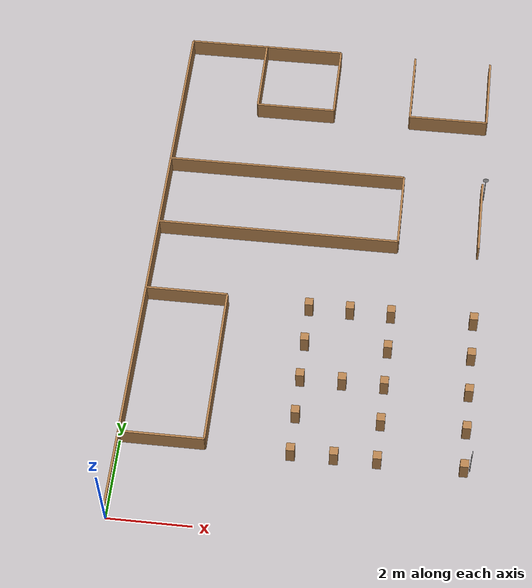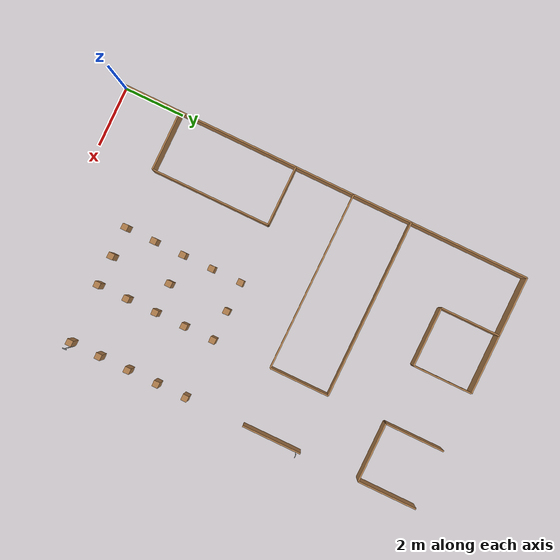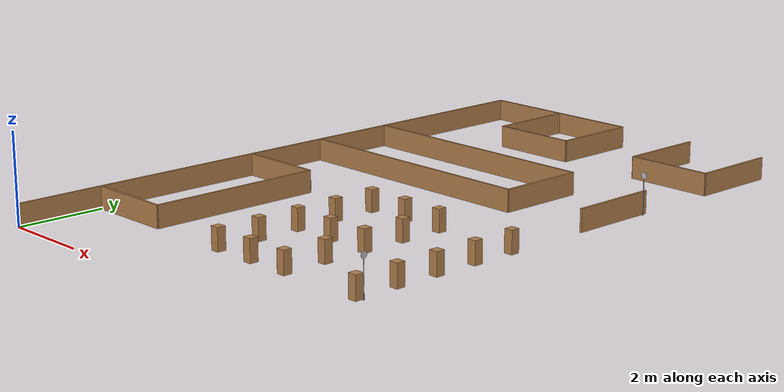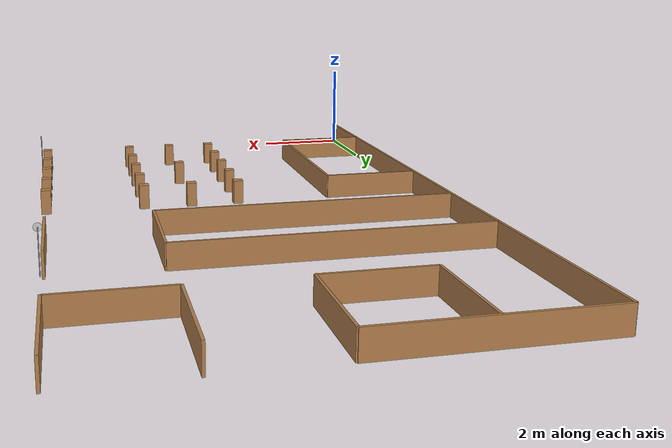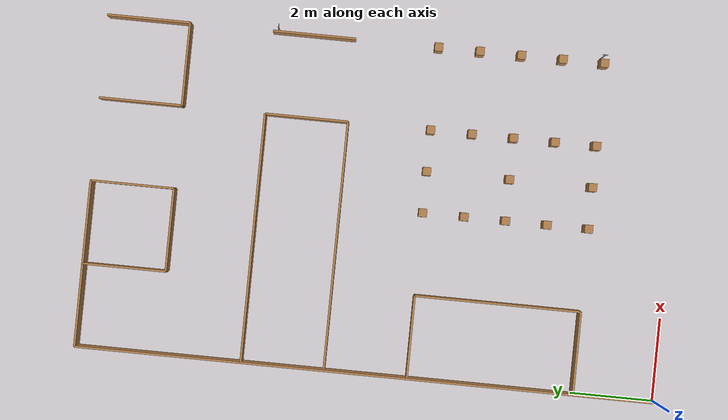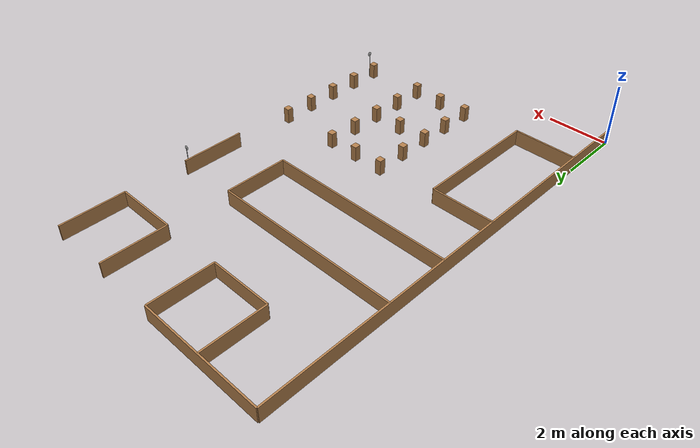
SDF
<sdf version="1.6">
 <world name="default">
  <model name="box_70">
   <pose>8.0 2.0 0.25 0 0 0</pose>
   <link name="link">
    <inertial>
     <mass>1</mass>
     <inertia><ixx>0</ixx><ixy>0</ixy><ixz>0</ixz><iyy>0</iyy><iyz>0</iyz><izz>0</izz></inertia>
    </inertial>
    <collision name="collision"><geometry><box><size>0.2 0.2 0.5</size></box></geometry></collision>
    <visual name="visual">
     <geometry><box><size>0.2 0.2 0.5</size></box></geometry>
     <material>
      <script><name>Gazebo/WoodPallet</name><uri>file://media/materials/scripts/gazebo.material</uri></script>
     </material>
    </visual>
   </link>
   <static>1</static>
  </model>
  <model name="box_68">
   <pose>8.0 3.0 0.25 0 0 0</pose>
   <link name="link">
    <inertial>
     <mass>1</mass>
     <inertia><ixx>0</ixx><ixy>0</ixy><ixz>0</ixz><iyy>0</iyy><iyz>0</iyz><izz>0</izz></inertia>
    </inertial>
    <collision name="collision"><geometry><box><size>0.2 0.2 0.5</size></box></geometry></collision>
    <visual name="visual">
     <geometry><box><size>0.2 0.2 0.5</size></box></geometry>
     <material>
      <script><name>Gazebo/WoodPallet</name><uri>file://media/materials/scripts/gazebo.material</uri></script>
     </material>
    </visual>
   </link>
   <static>1</static>
  </model>
  <model name="box_65">
   <pose>8.0 4.0 0.25 0 0 0</pose>
   <link name="link">
    <inertial>
     <mass>1</mass>
     <inertia><ixx>0</ixx><ixy>0</ixy><ixz>0</ixz><iyy>0</iyy><iyz>0</iyz><izz>0</izz></inertia>
    </inertial>
    <collision name="collision"><geometry><box><size>0.2 0.2 0.5</size></box></geometry></collision>
    <visual name="visual">
     <geometry><box><size>0.2 0.2 0.5</size></box></geometry>
     <material>
      <script><name>Gazebo/WoodPallet</name><uri>file://media/materials/scripts/gazebo.material</uri></script>
     </material>
    </visual>
   </link>
   <static>1</static>
  </model>
  <model name="box_62">
   <pose>8.0 4.0 0.25 0 0 0</pose>
   <link name="link">
    <inertial>
     <mass>1</mass>
     <inertia><ixx>0</ixx><ixy>0</ixy><ixz>0</ixz><iyy>0</iyy><iyz>0</iyz><izz>0</izz></inertia>
    </inertial>
    <collision name="collision"><geometry><box><size>0.2 0.2 0.5</size></box></geometry></collision>
    <visual name="visual">
     <geometry><box><size>0.2 0.2 0.5</size></box></geometry>
     <material>
      <script><name>Gazebo/WoodPallet</name><uri>file://media/materials/scripts/gazebo.material</uri></script>
     </material>
    </visual>
   </link>
   <static>1</static>
  </model>
  <model name="box_60">
   <pose>8.0 5.0 0.25 0 0 0</pose>
   <link name="link">
    <inertial>
     <mass>1</mass>
     <inertia><ixx>0</ixx><ixy>0</ixy><ixz>0</ixz><iyy>0</iyy><iyz>0</iyz><izz>0</izz></inertia>
    </inertial>
    <collision name="collision"><geometry><box><size>0.2 0.2 0.5</size></box></geometry></collision>
    <visual name="visual">
     <geometry><box><size>0.2 0.2 0.5</size></box></geometry>
     <material>
      <script><name>Gazebo/WoodPallet</name><uri>file://media/materials/scripts/gazebo.material</uri></script>
     </material>
    </visual>
   </link>
   <static>1</static>
  </model>
  <model name="box_57">
   <pose>8.0 6.0 0.25 0 0 0</pose>
   <link name="link">
    <inertial>
     <mass>1</mass>
     <inertia><ixx>0</ixx><ixy>0</ixy><ixz>0</ixz><iyy>0</iyy><iyz>0</iyz><izz>0</izz></inertia>
    </inertial>
    <collision name="collision"><geometry><box><size>0.2 0.2 0.5</size></box></geometry></collision>
    <visual name="visual">
     <geometry><box><size>0.2 0.2 0.5</size></box></geometry>
     <material>
      <script><name>Gazebo/WoodPallet</name><uri>file://media/materials/scripts/gazebo.material</uri></script>
     </material>
    </visual>
   </link>
   <static>1</static>
  </model>
  <model name="box_56">
   <pose>6.0 2.0 0.25 0 0 0</pose>
   <link name="link">
    <inertial>
     <mass>1</mass>
     <inertia><ixx>0</ixx><ixy>0</ixy><ixz>0</ixz><iyy>0</iyy><iyz>0</iyz><izz>0</izz></inertia>
    </inertial>
    <collision name="collision"><geometry><box><size>0.2 0.2 0.5</size></box></geometry></collision>
    <visual name="visual">
     <geometry><box><size>0.2 0.2 0.5</size></box></geometry>
     <material>
      <script><name>Gazebo/WoodPallet</name><uri>file://media/materials/scripts/gazebo.material</uri></script>
     </material>
    </visual>
   </link>
   <static>1</static>
  </model>
  <model name="box_55">
   <pose>5.0 2.0 0.25 0 0 0</pose>
   <link name="link">
    <inertial>
     <mass>1</mass>
     <inertia><ixx>0</ixx><ixy>0</ixy><ixz>0</ixz><iyy>0</iyy><iyz>0</iyz><izz>0</izz></inertia>
    </inertial>
    <collision name="collision"><geometry><box><size>0.2 0.2 0.5</size></box></geometry></collision>
    <visual name="visual">
     <geometry><box><size>0.2 0.2 0.5</size></box></geometry>
     <material>
      <script><name>Gazebo/WoodPallet</name><uri>file://media/materials/scripts/gazebo.material</uri></script>
     </material>
    </visual>
   </link>
   <static>1</static>
  </model>
  <model name="box_54">
   <pose>4.0 2.0 0.25 0 0 0</pose>
   <link name="link">
    <inertial>
     <mass>1</mass>
     <inertia><ixx>0</ixx><ixy>0</ixy><ixz>0</ixz><iyy>0</iyy><iyz>0</iyz><izz>0</izz></inertia>
    </inertial>
    <collision name="collision"><geometry><box><size>0.2 0.2 0.5</size></box></geometry></collision>
    <visual name="visual">
     <geometry><box><size>0.2 0.2 0.5</size></box></geometry>
     <material>
      <script><name>Gazebo/WoodPallet</name><uri>file://media/materials/scripts/gazebo.material</uri></script>
     </material>
    </visual>
   </link>
   <static>1</static>
  </model>
  <model name="box_53">
   <pose>6.0 3.0 0.25 0 0 0</pose>
   <link name="link">
    <inertial>
     <mass>1</mass>
     <inertia><ixx>0</ixx><ixy>0</ixy><ixz>0</ixz><iyy>0</iyy><iyz>0</iyz><izz>0</izz></inertia>
    </inertial>
    <collision name="collision"><geometry><box><size>0.2 0.2 0.5</size></box></geometry></collision>
    <visual name="visual">
     <geometry><box><size>0.2 0.2 0.5</size></box></geometry>
     <material>
      <script><name>Gazebo/WoodPallet</name><uri>file://media/materials/scripts/gazebo.material</uri></script>
     </material>
    </visual>
   </link>
   <static>1</static>
  </model>
  <model name="box_52">
   <pose>4.0 3.0 0.25 0 0 0</pose>
   <link name="link">
    <inertial>
     <mass>1</mass>
     <inertia><ixx>0</ixx><ixy>0</ixy><ixz>0</ixz><iyy>0</iyy><iyz>0</iyz><izz>0</izz></inertia>
    </inertial>
    <collision name="collision"><geometry><box><size>0.2 0.2 0.5</size></box></geometry></collision>
    <visual name="visual">
     <geometry><box><size>0.2 0.2 0.5</size></box></geometry>
     <material>
      <script><name>Gazebo/WoodPallet</name><uri>file://media/materials/scripts/gazebo.material</uri></script>
     </material>
    </visual>
   </link>
   <static>1</static>
  </model>
  <model name="box_51">
   <pose>6.0 4.0 0.25 0 0 0</pose>
   <link name="link">
    <inertial>
     <mass>1</mass>
     <inertia><ixx>0</ixx><ixy>0</ixy><ixz>0</ixz><iyy>0</iyy><iyz>0</iyz><izz>0</izz></inertia>
    </inertial>
    <collision name="collision"><geometry><box><size>0.2 0.2 0.5</size></box></geometry></collision>
    <visual name="visual">
     <geometry><box><size>0.2 0.2 0.5</size></box></geometry>
     <material>
      <script><name>Gazebo/WoodPallet</name><uri>file://media/materials/scripts/gazebo.material</uri></script>
     </material>
    </visual>
   </link>
   <static>1</static>
  </model>
  <model name="box_50">
   <pose>5.0 4.0 0.25 0 0 0</pose>
   <link name="link">
    <inertial>
     <mass>1</mass>
     <inertia><ixx>0</ixx><ixy>0</ixy><ixz>0</ixz><iyy>0</iyy><iyz>0</iyz><izz>0</izz></inertia>
    </inertial>
    <collision name="collision"><geometry><box><size>0.2 0.2 0.5</size></box></geometry></collision>
    <visual name="visual">
     <geometry><box><size>0.2 0.2 0.5</size></box></geometry>
     <material>
      <script><name>Gazebo/WoodPallet</name><uri>file://media/materials/scripts/gazebo.material</uri></script>
     </material>
    </visual>
   </link>
   <static>1</static>
  </model>
  <model name="box_49">
   <pose>4.0 4.0 0.25 0 0 0</pose>
   <link name="link">
    <inertial>
     <mass>1</mass>
     <inertia><ixx>0</ixx><ixy>0</ixy><ixz>0</ixz><iyy>0</iyy><iyz>0</iyz><izz>0</izz></inertia>
    </inertial>
    <collision name="collision"><geometry><box><size>0.2 0.2 0.5</size></box></geometry></collision>
    <visual name="visual">
     <geometry><box><size>0.2 0.2 0.5</size></box></geometry>
     <material>
      <script><name>Gazebo/WoodPallet</name><uri>file://media/materials/scripts/gazebo.material</uri></script>
     </material>
    </visual>
   </link>
   <static>1</static>
  </model>
  <model name="box_48">
   <pose>6.0 4.0 0.25 0 0 0</pose>
   <link name="link">
    <inertial>
     <mass>1</mass>
     <inertia><ixx>0</ixx><ixy>0</ixy><ixz>0</ixz><iyy>0</iyy><iyz>0</iyz><izz>0</izz></inertia>
    </inertial>
    <collision name="collision"><geometry><box><size>0.2 0.2 0.5</size></box></geometry></collision>
    <visual name="visual">
     <geometry><box><size>0.2 0.2 0.5</size></box></geometry>
     <material>
      <script><name>Gazebo/WoodPallet</name><uri>file://media/materials/scripts/gazebo.material</uri></script>
     </material>
    </visual>
   </link>
   <static>1</static>
  </model>
  <model name="box_47">
   <pose>5.0 4.0 0.25 0 0 0</pose>
   <link name="link">
    <inertial>
     <mass>1</mass>
     <inertia><ixx>0</ixx><ixy>0</ixy><ixz>0</ixz><iyy>0</iyy><iyz>0</iyz><izz>0</izz></inertia>
    </inertial>
    <collision name="collision"><geometry><box><size>0.2 0.2 0.5</size></box></geometry></collision>
    <visual name="visual">
     <geometry><box><size>0.2 0.2 0.5</size></box></geometry>
     <material>
      <script><name>Gazebo/WoodPallet</name><uri>file://media/materials/scripts/gazebo.material</uri></script>
     </material>
    </visual>
   </link>
   <static>1</static>
  </model>
  <model name="box_46">
   <pose>4.0 4.0 0.25 0 0 0</pose>
   <link name="link">
    <inertial>
     <mass>1</mass>
     <inertia><ixx>0</ixx><ixy>0</ixy><ixz>0</ixz><iyy>0</iyy><iyz>0</iyz><izz>0</izz></inertia>
    </inertial>
    <collision name="collision"><geometry><box><size>0.2 0.2 0.5</size></box></geometry></collision>
    <visual name="visual">
     <geometry><box><size>0.2 0.2 0.5</size></box></geometry>
     <material>
      <script><name>Gazebo/WoodPallet</name><uri>file://media/materials/scripts/gazebo.material</uri></script>
     </material>
    </visual>
   </link>
   <static>1</static>
  </model>
  <model name="box_45">
   <pose>6.0 5.0 0.25 0 0 0</pose>
   <link name="link">
    <inertial>
     <mass>1</mass>
     <inertia><ixx>0</ixx><ixy>0</ixy><ixz>0</ixz><iyy>0</iyy><iyz>0</iyz><izz>0</izz></inertia>
    </inertial>
    <collision name="collision"><geometry><box><size>0.2 0.2 0.5</size></box></geometry></collision>
    <visual name="visual">
     <geometry><box><size>0.2 0.2 0.5</size></box></geometry>
     <material>
      <script><name>Gazebo/WoodPallet</name><uri>file://media/materials/scripts/gazebo.material</uri></script>
     </material>
    </visual>
   </link>
   <static>1</static>
  </model>
  <model name="box_44">
   <pose>4.0 5.0 0.25 0 0 0</pose>
   <link name="link">
    <inertial>
     <mass>1</mass>
     <inertia><ixx>0</ixx><ixy>0</ixy><ixz>0</ixz><iyy>0</iyy><iyz>0</iyz><izz>0</izz></inertia>
    </inertial>
    <collision name="collision"><geometry><box><size>0.2 0.2 0.5</size></box></geometry></collision>
    <visual name="visual">
     <geometry><box><size>0.2 0.2 0.5</size></box></geometry>
     <material>
      <script><name>Gazebo/WoodPallet</name><uri>file://media/materials/scripts/gazebo.material</uri></script>
     </material>
    </visual>
   </link>
   <static>1</static>
  </model>
  <model name="box_43">
   <pose>6.0 6.0 0.25 0 0 0</pose>
   <link name="link">
    <inertial>
     <mass>1</mass>
     <inertia><ixx>0</ixx><ixy>0</ixy><ixz>0</ixz><iyy>0</iyy><iyz>0</iyz><izz>0</izz></inertia>
    </inertial>
    <collision name="collision"><geometry><box><size>0.2 0.2 0.5</size></box></geometry></collision>
    <visual name="visual">
     <geometry><box><size>0.2 0.2 0.5</size></box></geometry>
     <material>
      <script><name>Gazebo/WoodPallet</name><uri>file://media/materials/scripts/gazebo.material</uri></script>
     </material>
    </visual>
   </link>
   <static>1</static>
  </model>
  <model name="box_42">
   <pose>5.0 6.0 0.25 0 0 0</pose>
   <link name="link">
    <inertial>
     <mass>1</mass>
     <inertia><ixx>0</ixx><ixy>0</ixy><ixz>0</ixz><iyy>0</iyy><iyz>0</iyz><izz>0</izz></inertia>
    </inertial>
    <collision name="collision"><geometry><box><size>0.2 0.2 0.5</size></box></geometry></collision>
    <visual name="visual">
     <geometry><box><size>0.2 0.2 0.5</size></box></geometry>
     <material>
      <script><name>Gazebo/WoodPallet</name><uri>file://media/materials/scripts/gazebo.material</uri></script>
     </material>
    </visual>
   </link>
   <static>1</static>
  </model>
  <model name="box_41">
   <pose>4.0 6.0 0.25 0 0 0</pose>
   <link name="link">
    <inertial>
     <mass>1</mass>
     <inertia><ixx>0</ixx><ixy>0</ixy><ixz>0</ixz><iyy>0</iyy><iyz>0</iyz><izz>0</izz></inertia>
    </inertial>
    <collision name="collision"><geometry><box><size>0.2 0.2 0.5</size></box></geometry></collision>
    <visual name="visual">
     <geometry><box><size>0.2 0.2 0.5</size></box></geometry>
     <material>
      <script><name>Gazebo/WoodPallet</name><uri>file://media/materials/scripts/gazebo.material</uri></script>
     </material>
    </visual>
   </link>
   <static>1</static>
  </model>
  <include>
   <uri>model://brick-sign</uri>
   <name>sign_2</name>
   <pose>8.06 9.86 0 0 0 6.283185307179586</pose>
  </include>
  <include>
   <uri>model://right-sign</uri>
   <name>sign_1</name>
   <pose>8.14 2.0600000000000005 0 0 0 1.5707963267948966</pose>
  </include>
  <model name="box_37">
   <pose>8.0 13.0 0.25 0 0 -1.5707963267948966</pose>
   <link name="link">
    <inertial>
     <mass>1</mass>
     <inertia><ixx>0</ixx><ixy>0</ixy><ixz>0</ixz><iyy>0</iyy><iyz>0</iyz><izz>0</izz></inertia>
    </inertial>
    <collision name="collision"><geometry><box><size>2.0 0.05 0.5</size></box></geometry></collision>
    <visual name="visual">
     <geometry><box><size>2.0 0.05 0.5</size></box></geometry>
     <material>
      <script><name>Gazebo/WoodPallet</name><uri>file://media/materials/scripts/gazebo.material</uri></script>
     </material>
    </visual>
   </link>
   <static>1</static>
  </model>
  <model name="box_36">
   <pose>7.0 12.0 0.25 0 0 -3.141592653589793</pose>
   <link name="link">
    <inertial>
     <mass>1</mass>
     <inertia><ixx>0</ixx><ixy>0</ixy><ixz>0</ixz><iyy>0</iyy><iyz>0</iyz><izz>0</izz></inertia>
    </inertial>
    <collision name="collision"><geometry><box><size>2.0 0.05 0.5</size></box></geometry></collision>
    <visual name="visual">
     <geometry><box><size>2.0 0.05 0.5</size></box></geometry>
     <material>
      <script><name>Gazebo/WoodPallet</name><uri>file://media/materials/scripts/gazebo.material</uri></script>
     </material>
    </visual>
   </link>
   <static>1</static>
  </model>
  <model name="box_35">
   <pose>6.0 13.0 0.25 0 0 1.5707963267948966</pose>
   <link name="link">
    <inertial>
     <mass>1</mass>
     <inertia><ixx>0</ixx><ixy>0</ixy><ixz>0</ixz><iyy>0</iyy><iyz>0</iyz><izz>0</izz></inertia>
    </inertial>
    <collision name="collision"><geometry><box><size>2.0 0.05 0.5</size></box></geometry></collision>
    <visual name="visual">
     <geometry><box><size>2.0 0.05 0.5</size></box></geometry>
     <material>
      <script><name>Gazebo/WoodPallet</name><uri>file://media/materials/scripts/gazebo.material</uri></script>
     </material>
    </visual>
   </link>
   <static>1</static>
  </model>
  <model name="box_34">
   <pose>2.0 13.0 0.25 0 0 -1.5707963267948966</pose>
   <link name="link">
    <inertial>
     <mass>1</mass>
     <inertia><ixx>0</ixx><ixy>0</ixy><ixz>0</ixz><iyy>0</iyy><iyz>0</iyz><izz>0</izz></inertia>
    </inertial>
    <collision name="collision"><geometry><box><size>2.0 0.05 0.5</size></box></geometry></collision>
    <visual name="visual">
     <geometry><box><size>2.0 0.05 0.5</size></box></geometry>
     <material>
      <script><name>Gazebo/WoodPallet</name><uri>file://media/materials/scripts/gazebo.material</uri></script>
     </material>
    </visual>
   </link>
   <static>1</static>
  </model>
  <model name="box_33">
   <pose>3.0 12.0 0.25 0 0 -0.0</pose>
   <link name="link">
    <inertial>
     <mass>1</mass>
     <inertia><ixx>0</ixx><ixy>0</ixy><ixz>0</ixz><iyy>0</iyy><iyz>0</iyz><izz>0</izz></inertia>
    </inertial>
    <collision name="collision"><geometry><box><size>2.0 0.05 0.5</size></box></geometry></collision>
    <visual name="visual">
     <geometry><box><size>2.0 0.05 0.5</size></box></geometry>
     <material>
      <script><name>Gazebo/WoodPallet</name><uri>file://media/materials/scripts/gazebo.material</uri></script>
     </material>
    </visual>
   </link>
   <static>1</static>
  </model>
  <model name="box_32">
   <pose>4.0 13.0 0.25 0 0 1.5707963267948966</pose>
   <link name="link">
    <inertial>
     <mass>1</mass>
     <inertia><ixx>0</ixx><ixy>0</ixy><ixz>0</ixz><iyy>0</iyy><iyz>0</iyz><izz>0</izz></inertia>
    </inertial>
    <collision name="collision"><geometry><box><size>2.0 0.05 0.5</size></box></geometry></collision>
    <visual name="visual">
     <geometry><box><size>2.0 0.05 0.5</size></box></geometry>
     <material>
      <script><name>Gazebo/WoodPallet</name><uri>file://media/materials/scripts/gazebo.material</uri></script>
     </material>
    </visual>
   </link>
   <static>1</static>
  </model>
  <model name="box_31">
   <pose>1.0 2.0 0.25 0 0 -0.0</pose>
   <link name="link">
    <inertial>
     <mass>1</mass>
     <inertia><ixx>0</ixx><ixy>0</ixy><ixz>0</ixz><iyy>0</iyy><iyz>0</iyz><izz>0</izz></inertia>
    </inertial>
    <collision name="collision"><geometry><box><size>2.0 0.05 0.5</size></box></geometry></collision>
    <visual name="visual">
     <geometry><box><size>2.0 0.05 0.5</size></box></geometry>
     <material>
      <script><name>Gazebo/WoodPallet</name><uri>file://media/materials/scripts/gazebo.material</uri></script>
     </material>
    </visual>
   </link>
   <static>1</static>
  </model>
  <model name="box_30">
   <pose>2.0 4.0 0.25 0 0 1.5707963267948966</pose>
   <link name="link">
    <inertial>
     <mass>1</mass>
     <inertia><ixx>0</ixx><ixy>0</ixy><ixz>0</ixz><iyy>0</iyy><iyz>0</iyz><izz>0</izz></inertia>
    </inertial>
    <collision name="collision"><geometry><box><size>4.0 0.05 0.5</size></box></geometry></collision>
    <visual name="visual">
     <geometry><box><size>4.0 0.05 0.5</size></box></geometry>
     <material>
      <script><name>Gazebo/WoodPallet</name><uri>file://media/materials/scripts/gazebo.material</uri></script>
     </material>
    </visual>
   </link>
   <static>1</static>
  </model>
  <model name="box_29">
   <pose>1.0 6.0 0.25 0 0 -3.141592653589793</pose>
   <link name="link">
    <inertial>
     <mass>1</mass>
     <inertia><ixx>0</ixx><ixy>0</ixy><ixz>0</ixz><iyy>0</iyy><iyz>0</iyz><izz>0</izz></inertia>
    </inertial>
    <collision name="collision"><geometry><box><size>2.0 0.05 0.5</size></box></geometry></collision>
    <visual name="visual">
     <geometry><box><size>2.0 0.05 0.5</size></box></geometry>
     <material>
      <script><name>Gazebo/WoodPallet</name><uri>file://media/materials/scripts/gazebo.material</uri></script>
     </material>
    </visual>
   </link>
   <static>1</static>
  </model>
  <model name="box_28">
   <pose>3.0 10.0 0.25 0 0 -0.0</pose>
   <link name="link">
    <inertial>
     <mass>1</mass>
     <inertia><ixx>0</ixx><ixy>0</ixy><ixz>0</ixz><iyy>0</iyy><iyz>0</iyz><izz>0</izz></inertia>
    </inertial>
    <collision name="collision"><geometry><box><size>6.0 0.05 0.5</size></box></geometry></collision>
    <visual name="visual">
     <geometry><box><size>6.0 0.05 0.5</size></box></geometry>
     <material>
      <script><name>Gazebo/WoodPallet</name><uri>file://media/materials/scripts/gazebo.material</uri></script>
     </material>
    </visual>
   </link>
   <static>1</static>
  </model>
  <model name="box_27">
   <pose>6.0 9.0 0.25 0 0 -1.5707963267948966</pose>
   <link name="link">
    <inertial>
     <mass>1</mass>
     <inertia><ixx>0</ixx><ixy>0</ixy><ixz>0</ixz><iyy>0</iyy><iyz>0</iyz><izz>0</izz></inertia>
    </inertial>
    <collision name="collision"><geometry><box><size>2.0 0.05 0.5</size></box></geometry></collision>
    <visual name="visual">
     <geometry><box><size>2.0 0.05 0.5</size></box></geometry>
     <material>
      <script><name>Gazebo/WoodPallet</name><uri>file://media/materials/scripts/gazebo.material</uri></script>
     </material>
    </visual>
   </link>
   <static>1</static>
  </model>
  <model name="box_26">
   <pose>3.0 8.0 0.25 0 0 -3.141592653589793</pose>
   <link name="link">
    <inertial>
     <mass>1</mass>
     <inertia><ixx>0</ixx><ixy>0</ixy><ixz>0</ixz><iyy>0</iyy><iyz>0</iyz><izz>0</izz></inertia>
    </inertial>
    <collision name="collision"><geometry><box><size>6.0 0.05 0.5</size></box></geometry></collision>
    <visual name="visual">
     <geometry><box><size>6.0 0.05 0.5</size></box></geometry>
     <material>
      <script><name>Gazebo/WoodPallet</name><uri>file://media/materials/scripts/gazebo.material</uri></script>
     </material>
    </visual>
   </link>
   <static>1</static>
  </model>
  <model name="box_24">
   <pose>8.0 9.0 0.25 0 0 -1.5707963267948966</pose>
   <link name="link">
    <inertial>
     <mass>1</mass>
     <inertia><ixx>0</ixx><ixy>0</ixy><ixz>0</ixz><iyy>0</iyy><iyz>0</iyz><izz>0</izz></inertia>
    </inertial>
    <collision name="collision"><geometry><box><size>2.0 0.05 0.5</size></box></geometry></collision>
    <visual name="visual">
     <geometry><box><size>2.0 0.05 0.5</size></box></geometry>
     <material>
      <script><name>Gazebo/WoodPallet</name><uri>file://media/materials/scripts/gazebo.material</uri></script>
     </material>
    </visual>
   </link>
   <static>1</static>
  </model>
  <model name="box_2">
   <pose>0.0 7.0 0.25 0 0 1.5707963267948966</pose>
   <link name="link">
    <inertial>
     <mass>1</mass>
     <inertia><ixx>0</ixx><ixy>0</ixy><ixz>0</ixz><iyy>0</iyy><iyz>0</iyz><izz>0</izz></inertia>
    </inertial>
    <collision name="collision"><geometry><box><size>14.0 0.05 0.5</size></box></geometry></collision>
    <visual name="visual">
     <geometry><box><size>14.0 0.05 0.5</size></box></geometry>
     <material>
      <script><name>Gazebo/WoodPallet</name><uri>file://media/materials/scripts/gazebo.material</uri></script>
     </material>
    </visual>
   </link>
   <static>1</static>
  </model>
  <model name="box_1">
   <pose>2.0 14.0 0.25 0 0 -0.0</pose>
   <link name="link">
    <inertial>
     <mass>1</mass>
     <inertia><ixx>0</ixx><ixy>0</ixy><ixz>0</ixz><iyy>0</iyy><iyz>0</iyz><izz>0</izz></inertia>
    </inertial>
    <collision name="collision"><geometry><box><size>4.0 0.05 0.5</size></box></geometry></collision>
    <visual name="visual">
     <geometry><box><size>4.0 0.05 0.5</size></box></geometry>
     <material>
      <script><name>Gazebo/WoodPallet</name><uri>file://media/materials/scripts/gazebo.material</uri></script>
     </material>
    </visual>
   </link>
   <static>1</static>
  </model>
 </world>
</sdf>
